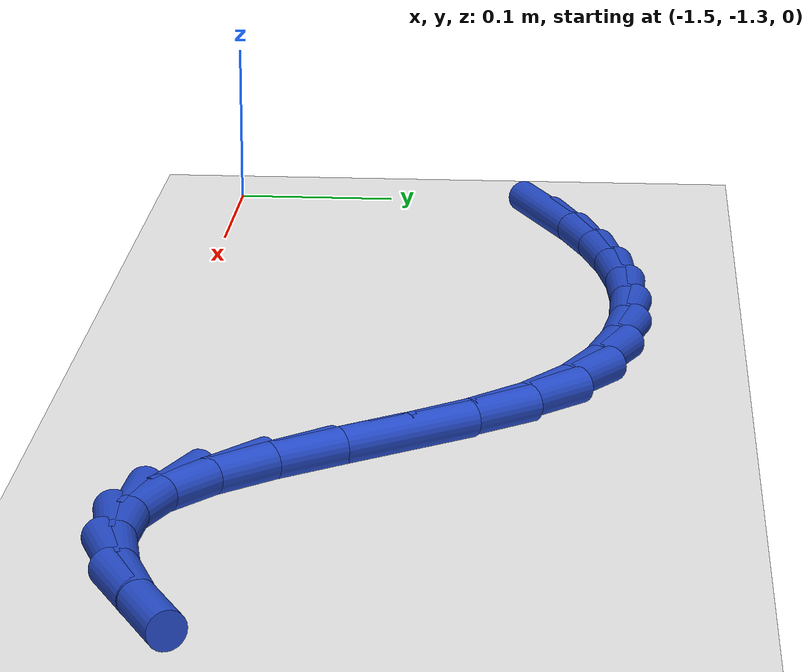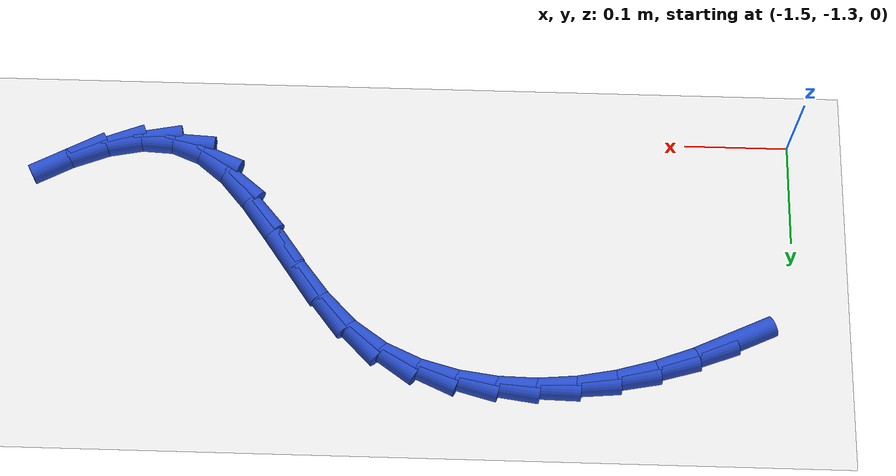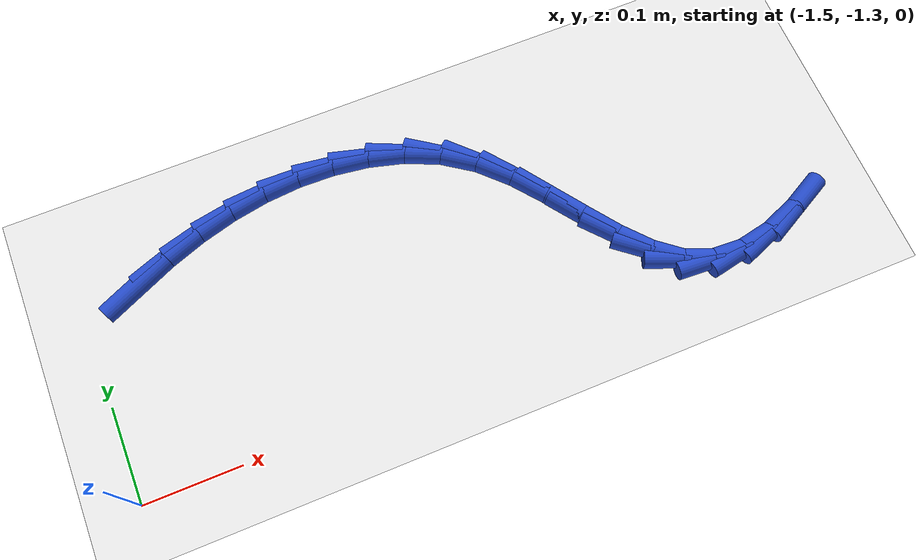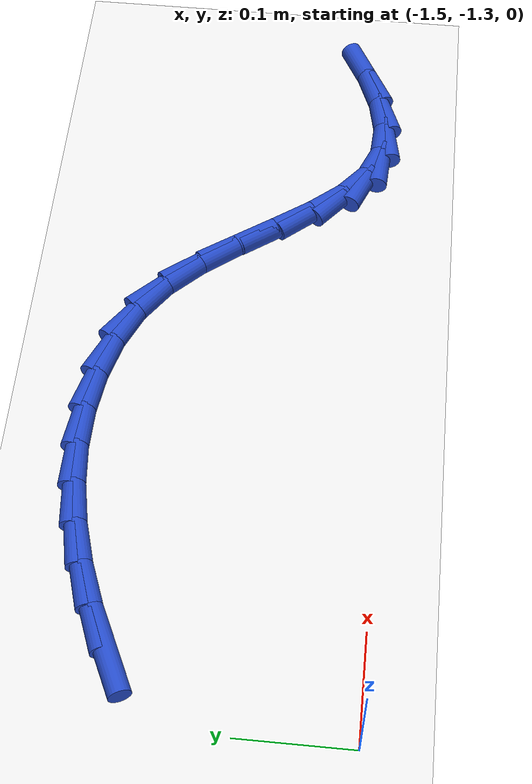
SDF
<sdf version="1.6">
 <world name="default">
  <model name="ground_plane">
   <static>1</static>
   <link name="link">
    <collision name="collision">
     <geometry><plane><normal>0 0 1</normal><size>100 100</size></plane></geometry>
     <surface><friction><ode><mu>100</mu><mu2>50</mu2></ode></friction></surface>
    </collision>
    <visual name="visual">
     <cast_shadows>0</cast_shadows>
     <geometry><plane><normal>0 0 1</normal><size>100 100</size></plane></geometry>
     <material>
      <script><uri>file://media/materials/scripts/gazebo.material</uri><name>Gazebo/WhiteGlow</name></script>
     </material>
    </visual>
   </link>
  </model>
  <model name="line">
   <link name="link_190">
    <pose>-1.4416965678968015 -1.0946157437506614 0.01 0 1.57 0.43176913846756154</pose>
    <collision name="collision">
     <geometry><cylinder><radius>0.01</radius><length>0.08</length></cylinder></geometry>
    </collision>
    <visual name="visual">
     <material>
      <script><name>Gazebo/Blue</name><uri>file://media/materials/scripts/gazebo.material</uri></script>
     </material>
     <geometry><cylinder><radius>0.01</radius><length>0.08</length></cylinder></geometry>
    </visual>
   </link>
   <link name="link_191">
    <pose>-1.405136105527925 -1.0777699984449445 0.01 0 1.57 0.35804196007321276</pose>
    <collision name="collision">
     <geometry><cylinder><radius>0.01</radius><length>0.08</length></cylinder></geometry>
    </collision>
    <visual name="visual">
     <material>
      <script><name>Gazebo/Blue</name><uri>file://media/materials/scripts/gazebo.material</uri></script>
     </material>
     <geometry><cylinder><radius>0.01</radius><length>0.08</length></cylinder></geometry>
    </visual>
   </link>
   <link name="link_192">
    <pose>-1.368189831773576 -1.0639458465940959 0.01 0 1.57 0.2759162233005489</pose>
    <collision name="collision">
     <geometry><cylinder><radius>0.01</radius><length>0.08</length></cylinder></geometry>
    </collision>
    <visual name="visual">
     <material>
      <script><name>Gazebo/Blue</name><uri>file://media/materials/scripts/gazebo.material</uri></script>
     </material>
     <geometry><cylinder><radius>0.01</radius><length>0.08</length></cylinder></geometry>
    </visual>
   </link>
   <link name="link_193">
    <pose>-1.3309464418161412 -1.0534008264069332 0.01 0 1.57 0.1849910997356702</pose>
    <collision name="collision">
     <geometry><cylinder><radius>0.01</radius><length>0.08</length></cylinder></geometry>
    </collision>
    <visual name="visual">
     <material>
      <script><name>Gazebo/Blue</name><uri>file://media/materials/scripts/gazebo.material</uri></script>
     </material>
     <geometry><cylinder><radius>0.01</radius><length>0.08</length></cylinder></geometry>
    </visual>
   </link>
   <link name="link_194">
    <pose>-1.2934946391322475 -1.046392447016443 0.01 0 1.57 0.08534185021141641</pose>
    <collision name="collision">
     <geometry><cylinder><radius>0.01</radius><length>0.08</length></cylinder></geometry>
    </collision>
    <visual name="visual">
     <material>
      <script><name>Gazebo/Blue</name><uri>file://media/materials/scripts/gazebo.material</uri></script>
     </material>
     <geometry><cylinder><radius>0.01</radius><length>0.08</length></cylinder></geometry>
    </visual>
   </link>
   <link name="link_195">
    <pose>-1.2559231271985227 -1.0431782175556108 0.01 0 1.57 -0.022266891821575117</pose>
    <collision name="collision">
     <geometry><cylinder><radius>0.01</radius><length>0.08</length></cylinder></geometry>
    </collision>
    <visual name="visual">
     <material>
      <script><name>Gazebo/Blue</name><uri>file://media/materials/scripts/gazebo.material</uri></script>
     </material>
     <geometry><cylinder><radius>0.01</radius><length>0.08</length></cylinder></geometry>
    </visual>
   </link>
   <link name="link_196">
    <pose>-1.2183206094915935 -1.0440156471574233 0.01 0 1.57 -0.1364278865846661</pose>
    <collision name="collision">
     <geometry><cylinder><radius>0.01</radius><length>0.08</length></cylinder></geometry>
    </collision>
    <visual name="visual">
     <material>
      <script><name>Gazebo/Blue</name><uri>file://media/materials/scripts/gazebo.material</uri></script>
     </material>
     <geometry><cylinder><radius>0.01</radius><length>0.08</length></cylinder></geometry>
    </visual>
   </link>
   <link name="link_197">
    <pose>-1.1807871651375446 -1.0491682631900365 0.01 0 1.57 -0.264658498515942</pose>
    <collision name="collision">
     <geometry><cylinder><radius>0.01</radius><length>0.08</length></cylinder></geometry>
    </collision>
    <visual name="visual">
     <material>
      <script><name>Gazebo/Blue</name><uri>file://media/materials/scripts/gazebo.material</uri></script>
     </material>
     <geometry><cylinder><radius>0.01</radius><length>0.08</length></cylinder></geometry>
    </visual>
   </link>
   <link name="link_198">
    <pose>-1.1439165712748054 -1.0591607816906923 0.01 0 1.57 -0.4226054094979839</pose>
    <collision name="collision">
     <geometry><cylinder><radius>0.01</radius><length>0.08</length></cylinder></geometry>
    </collision>
    <visual name="visual">
     <material>
      <script><name>Gazebo/Blue</name><uri>file://media/materials/scripts/gazebo.material</uri></script>
     </material>
     <geometry><cylinder><radius>0.01</radius><length>0.08</length></cylinder></geometry>
    </visual>
   </link>
   <link name="link_199">
    <pose>-1.1089754105081702 -1.0748738633427883 0.01 0 1.57 -0.6135454155166455</pose>
    <collision name="collision">
     <geometry><cylinder><radius>0.01</radius><length>0.08</length></cylinder></geometry>
    </collision>
    <visual name="visual">
     <material>
      <script><name>Gazebo/Blue</name><uri>file://media/materials/scripts/gazebo.material</uri></script>
     </material>
     <geometry><cylinder><radius>0.01</radius><length>0.08</length></cylinder></geometry>
    </visual>
   </link>
   <link name="link_200">
    <pose>-1.0772699564901511 -1.097201138950781 0.01 0 1.57 -0.7970678250146352</pose>
    <collision name="collision">
     <geometry><cylinder><radius>0.01</radius><length>0.08</length></cylinder></geometry>
    </collision>
    <visual name="visual">
     <material>
      <script><name>Gazebo/Blue</name><uri>file://media/materials/scripts/gazebo.material</uri></script>
     </material>
     <geometry><cylinder><radius>0.01</radius><length>0.08</length></cylinder></geometry>
    </visual>
   </link>
   <link name="link_201">
    <pose>-1.0492904345109335 -1.1258414249244117 0.01 0 1.57 -0.9103032862689858</pose>
    <collision name="collision">
     <geometry><cylinder><radius>0.01</radius><length>0.08</length></cylinder></geometry>
    </collision>
    <visual name="visual">
     <material>
      <script><name>Gazebo/Blue</name><uri>file://media/materials/scripts/gazebo.material</uri></script>
     </material>
     <geometry><cylinder><radius>0.01</radius><length>0.08</length></cylinder></geometry>
    </visual>
   </link>
   <link name="link_202">
    <pose>-1.0240497769517294 -1.1583305643567159 0.01 0 1.57 -0.9582317624902309</pose>
    <collision name="collision">
     <geometry><cylinder><radius>0.01</radius><length>0.08</length></cylinder></geometry>
    </collision>
    <visual name="visual">
     <material>
      <script><name>Gazebo/Blue</name><uri>file://media/materials/scripts/gazebo.material</uri></script>
     </material>
     <geometry><cylinder><radius>0.01</radius><length>0.08</length></cylinder></geometry>
    </visual>
   </link>
   <link name="link_203">
    <pose>-1.0004052953948506 -1.19197654868484 0.01 0 1.57 -0.945314444218284</pose>
    <collision name="collision">
     <geometry><cylinder><radius>0.01</radius><length>0.08</length></cylinder></geometry>
    </collision>
    <visual name="visual">
     <material>
      <script><name>Gazebo/Blue</name><uri>file://media/materials/scripts/gazebo.material</uri></script>
     </material>
     <geometry><cylinder><radius>0.01</radius><length>0.08</length></cylinder></geometry>
    </visual>
   </link>
   <link name="link_204">
    <pose>-0.97721430142261 -1.2240873693459295 0.01 0 1.57 -0.8625852415640197</pose>
    <collision name="collision">
     <geometry><cylinder><radius>0.01</radius><length>0.08</length></cylinder></geometry>
    </collision>
    <visual name="visual">
     <material>
      <script><name>Gazebo/Blue</name><uri>file://media/materials/scripts/gazebo.material</uri></script>
     </material>
     <geometry><cylinder><radius>0.01</radius><length>0.08</length></cylinder></geometry>
    </visual>
   </link>
   <link name="link_205">
    <pose>-0.95333410661732 -1.2519710177771304 0.01 0 1.57 -0.6840336690344491</pose>
    <collision name="collision">
     <geometry><cylinder><radius>0.01</radius><length>0.08</length></cylinder></geometry>
    </collision>
    <visual name="visual">
     <material>
      <script><name>Gazebo/Blue</name><uri>file://media/materials/scripts/gazebo.material</uri></script>
     </material>
     <geometry><cylinder><radius>0.01</radius><length>0.08</length></cylinder></geometry>
    </visual>
   </link>
   <link name="link_206">
    <pose>-0.9276220225612926 -1.2729354854155885 0.01 0 1.57 -0.38250344968624994</pose>
    <collision name="collision">
     <geometry><cylinder><radius>0.01</radius><length>0.08</length></cylinder></geometry>
    </collision>
    <visual name="visual">
     <material>
      <script><name>Gazebo/Blue</name><uri>file://media/materials/scripts/gazebo.material</uri></script>
     </material>
     <geometry><cylinder><radius>0.01</radius><length>0.08</length></cylinder></geometry>
    </visual>
   </link>
   <link name="link_207">
    <pose>-0.899005451833513 -1.2844484600618264 0.01 0 1.57 -0.05563710369657267</pose>
    <collision name="collision">
     <geometry><cylinder><radius>0.01</radius><length>0.08</length></cylinder></geometry>
    </collision>
    <visual name="visual">
     <material>
      <script><name>Gazebo/Blue</name><uri>file://media/materials/scripts/gazebo.material</uri></script>
     </material>
     <geometry><cylinder><radius>0.01</radius><length>0.08</length></cylinder></geometry>
    </visual>
   </link>
   <link name="link_208">
    <pose>-0.867391237214907 -1.2862092005571653 0.01 0 1.57 0.19328216771148743</pose>
    <collision name="collision">
     <geometry><cylinder><radius>0.01</radius><length>0.08</length></cylinder></geometry>
    </collision>
    <visual name="visual">
     <material>
      <script><name>Gazebo/Blue</name><uri>file://media/materials/scripts/gazebo.material</uri></script>
     </material>
     <geometry><cylinder><radius>0.01</radius><length>0.08</length></cylinder></geometry>
    </visual>
   </link>
   <link name="link_209">
    <pose>-0.8334062405850263 -1.2795574679054138 0.01 0 1.57 0.36597800568405014</pose>
    <collision name="collision">
     <geometry><cylinder><radius>0.01</radius><length>0.08</length></cylinder></geometry>
    </collision>
    <visual name="visual">
     <material>
      <script><name>Gazebo/Blue</name><uri>file://media/materials/scripts/gazebo.material</uri></script>
     </material>
     <geometry><cylinder><radius>0.01</radius><length>0.08</length></cylinder></geometry>
    </visual>
   </link>
   <link name="link_210">
    <pose>-0.797693985753001 -1.2658709858971482 0.01 0 1.57 0.48399252877881666</pose>
    <collision name="collision">
     <geometry><cylinder><radius>0.01</radius><length>0.08</length></cylinder></geometry>
    </collision>
    <visual name="visual">
     <material>
      <script><name>Gazebo/Blue</name><uri>file://media/materials/scripts/gazebo.material</uri></script>
     </material>
     <geometry><cylinder><radius>0.01</radius><length>0.08</length></cylinder></geometry>
    </visual>
   </link>
  </model>
 </world>
</sdf>
